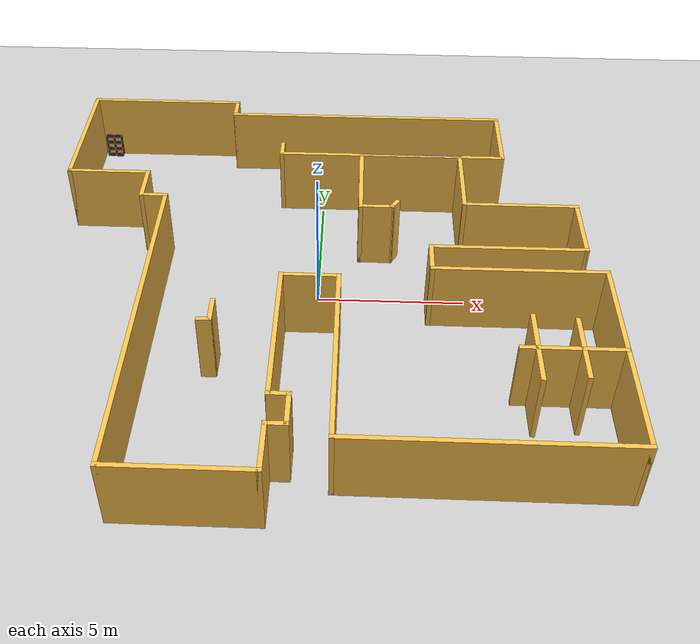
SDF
<sdf version="1.6">
 <world name="default">
  <model name="ground_plane">
   <static>1</static>
   <link name="link">
    <collision name="collision">
     <geometry><plane><normal>0 0 1</normal><size>100 100</size></plane></geometry>
     <surface>
      <contact><collide_bitmask>65535</collide_bitmask></contact>
      <friction><ode><mu>100</mu><mu2>50</mu2></ode></friction>
     </surface>
    </collision>
    <visual name="visual">
     <cast_shadows>0</cast_shadows>
     <geometry><plane><normal>0 0 1</normal><size>100 100</size></plane></geometry>
     <material>
      <script><uri>file://media/materials/scripts/gazebo.material</uri><name>Gazebo/Grey</name></script>
     </material>
    </visual>
   </link>
  </model>
  <model name="map_103">
   <pose>0.09073 -0.334732 0 0 -0 0</pose>
   <link name="Wall_10">
    <collision name="Wall_10_Collision">
     <geometry><box><size>1 0.15 2.5</size></box></geometry>
     <pose>0 0 1.25 0 -0 0</pose>
    </collision>
    <visual name="Wall_10_Visual">
     <pose>0 0 1.25 0 -0 0</pose>
     <geometry><box><size>1 0.15 2.5</size></box></geometry>
     <material>
      <script><uri>file://media/materials/scripts/gazebo.material</uri><name>Gazebo/Grey</name></script>
      <ambient>1 0.764706 0.305882 1</ambient>
     </material>
     <meta><layer>0</layer></meta>
    </visual>
    <pose>-5.975 2.825 0 0 -0 0</pose>
   </link>
   <link name="Wall_11">
    <collision name="Wall_11_Collision">
     <geometry><box><size>12 0.15 2.5</size></box></geometry>
     <pose>0 0 1.25 0 -0 0</pose>
    </collision>
    <visual name="Wall_11_Visual">
     <pose>0 0 1.25 0 -0 0</pose>
     <geometry><box><size>12 0.15 2.5</size></box></geometry>
     <material>
      <script><uri>file://media/materials/scripts/gazebo.material</uri><name>Gazebo/Grey</name></script>
      <ambient>1 0.764706 0.305882 1</ambient>
     </material>
     <meta><layer>0</layer></meta>
    </visual>
    <pose>-5.55 -3.1 0 0 -0 -1.5708</pose>
   </link>
   <link name="Wall_12">
    <collision name="Wall_12_Collision">
     <geometry><box><size>4.5 0.15 2.5</size></box></geometry>
     <pose>0 0 1.25 0 -0 0</pose>
    </collision>
    <visual name="Wall_12_Visual">
     <pose>0 0 1.25 0 -0 0</pose>
     <geometry><box><size>4.5 0.15 2.5</size></box></geometry>
     <material>
      <script><uri>file://media/materials/scripts/gazebo.material</uri><name>Gazebo/Grey</name></script>
      <ambient>1 0.764706 0.305882 1</ambient>
     </material>
     <meta><layer>0</layer></meta>
    </visual>
    <pose>-3.375 -9.025 0 0 -0 0</pose>
   </link>
   <link name="Wall_13">
    <collision name="Wall_13_Collision">
     <geometry><box><size>1.75 0.15 2.5</size></box></geometry>
     <pose>0 0 1.25 0 -0 0</pose>
    </collision>
    <visual name="Wall_13_Visual">
     <pose>0 0 1.25 0 -0 0</pose>
     <geometry><box><size>1.75 0.15 2.5</size></box></geometry>
     <material>
      <script><uri>file://media/materials/scripts/gazebo.material</uri><name>Gazebo/Grey</name></script>
      <ambient>1 0.764706 0.305882 1</ambient>
     </material>
     <meta><layer>0</layer></meta>
    </visual>
    <pose>-1.2 -8.225 0 0 -0 1.5708</pose>
   </link>
   <link name="Wall_14">
    <collision name="Wall_14_Collision">
     <geometry><box><size>0.75 0.15 2.5</size></box></geometry>
     <pose>0 0 1.25 0 -0 0</pose>
    </collision>
    <visual name="Wall_14_Visual">
     <pose>0 0 1.25 0 -0 0</pose>
     <geometry><box><size>0.75 0.15 2.5</size></box></geometry>
     <material>
      <script><uri>file://media/materials/scripts/gazebo.material</uri><name>Gazebo/Grey</name></script>
      <ambient>1 0.764706 0.305882 1</ambient>
     </material>
     <meta><layer>0</layer></meta>
    </visual>
    <pose>-0.9 -7.425 0 0 -0 0</pose>
   </link>
   <link name="Wall_15">
    <collision name="Wall_15_Collision">
     <geometry><box><size>1.25 0.15 2.5</size></box></geometry>
     <pose>0 0 1.25 0 -0 0</pose>
    </collision>
    <visual name="Wall_15_Visual">
     <pose>0 0 1.25 0 -0 0</pose>
     <geometry><box><size>1.25 0.15 2.5</size></box></geometry>
     <material>
      <script><uri>file://media/materials/scripts/gazebo.material</uri><name>Gazebo/Grey</name></script>
      <ambient>1 0.764706 0.305882 1</ambient>
     </material>
     <meta><layer>0</layer></meta>
    </visual>
    <pose>-0.6 -6.875 0 0 -0 1.5708</pose>
   </link>
   <link name="Wall_16">
    <collision name="Wall_16_Collision">
     <geometry><box><size>0.75 0.15 2.5</size></box></geometry>
     <pose>0 0 1.25 0 -0 0</pose>
    </collision>
    <visual name="Wall_16_Visual">
     <pose>0 0 1.25 0 -0 0</pose>
     <geometry><box><size>0.75 0.15 2.5</size></box></geometry>
     <material>
      <script><uri>file://media/materials/scripts/gazebo.material</uri><name>Gazebo/Grey</name></script>
      <ambient>1 0.764706 0.305882 1</ambient>
     </material>
     <meta><layer>0</layer></meta>
    </visual>
    <pose>-0.9 -6.325 0 0 -0 3.14159</pose>
   </link>
   <link name="Wall_20">
    <collision name="Wall_20_Collision">
     <geometry><box><size>8.75 0.15 2.5</size></box></geometry>
     <pose>0 0 1.25 0 -0 0</pose>
    </collision>
    <visual name="Wall_20_Visual">
     <pose>0 0 1.25 0 -0 0</pose>
     <geometry><box><size>8.75 0.15 2.5</size></box></geometry>
     <material>
      <script><uri>file://media/materials/scripts/gazebo.material</uri><name>Gazebo/Grey</name></script>
      <ambient>1 0.764706 0.305882 1</ambient>
     </material>
     <meta><layer>0</layer></meta>
    </visual>
    <pose>4.95 -7.825 0 0 -0 0</pose>
   </link>
   <link name="Wall_21">
    <collision name="Wall_21_Collision">
     <geometry><box><size>7.25 0.15 2.5</size></box></geometry>
     <pose>0 0 1.25 0 -0 0</pose>
    </collision>
    <visual name="Wall_21_Visual">
     <pose>0 0 1.25 0 -0 0</pose>
     <geometry><box><size>7.25 0.15 2.5</size></box></geometry>
     <material>
      <script><uri>file://media/materials/scripts/gazebo.material</uri><name>Gazebo/Grey</name></script>
      <ambient>1 0.764706 0.305882 1</ambient>
     </material>
     <meta><layer>0</layer></meta>
    </visual>
    <pose>9.25 -4.275 0 0 -0 1.5708</pose>
   </link>
   <link name="Wall_22">
    <collision name="Wall_22_Collision">
     <geometry><box><size>5.75 0.15 2.5</size></box></geometry>
     <pose>0 0 1.25 0 -0 0</pose>
    </collision>
    <visual name="Wall_22_Visual">
     <pose>0 0 1.25 0 -0 0</pose>
     <geometry><box><size>5.75 0.15 2.5</size></box></geometry>
     <material>
      <script><uri>file://media/materials/scripts/gazebo.material</uri><name>Gazebo/Grey</name></script>
      <ambient>1 0.764706 0.305882 1</ambient>
     </material>
     <meta><layer>0</layer></meta>
    </visual>
    <pose>6.45 -0.725 0 0 -0 3.14159</pose>
   </link>
   <link name="Wall_23">
    <collision name="Wall_23_Collision">
     <geometry><box><size>1.25 0.15 2.5</size></box></geometry>
     <pose>0 0 1.25 0 -0 0</pose>
    </collision>
    <visual name="Wall_23_Visual">
     <pose>0 0 1.25 0 -0 0</pose>
     <geometry><box><size>1.25 0.15 2.5</size></box></geometry>
     <material>
      <script><uri>file://media/materials/scripts/gazebo.material</uri><name>Gazebo/Grey</name></script>
      <ambient>1 0.764706 0.305882 1</ambient>
     </material>
     <meta><layer>0</layer></meta>
    </visual>
    <pose>3.65 -0.175 0 0 -0 1.5708</pose>
   </link>
   <link name="Wall_24">
    <collision name="Wall_24_Collision">
     <geometry><box><size>5.25 0.15 2.5</size></box></geometry>
     <pose>0 0 1.25 0 -0 0</pose>
    </collision>
    <visual name="Wall_24_Visual">
     <pose>0 0 1.25 0 -0 0</pose>
     <geometry><box><size>5.25 0.15 2.5</size></box></geometry>
     <material>
      <script><uri>file://media/materials/scripts/gazebo.material</uri><name>Gazebo/Grey</name></script>
      <ambient>1 0.764706 0.305882 1</ambient>
     </material>
     <meta><layer>0</layer></meta>
    </visual>
    <pose>6.2 0.375 0 0 -0 0</pose>
   </link>
   <link name="Wall_26">
    <collision name="Wall_26_Collision">
     <geometry><box><size>2.5 0.15 2.5</size></box></geometry>
     <pose>0 0 1.25 0 -0 0</pose>
    </collision>
    <visual name="Wall_26_Visual">
     <pose>0 0 1.25 0 -0 0</pose>
     <geometry><box><size>2.5 0.15 2.5</size></box></geometry>
     <material>
      <script><uri>file://media/materials/scripts/gazebo.material</uri><name>Gazebo/Grey</name></script>
      <ambient>1 0.764706 0.305882 1</ambient>
     </material>
     <meta><layer>0</layer></meta>
    </visual>
    <pose>8.75 1.55 0 0 -0 1.5708</pose>
   </link>
   <link name="Wall_27">
    <collision name="Wall_27_Collision">
     <geometry><box><size>4 0.15 2.5</size></box></geometry>
     <pose>0 0 1.25 0 -0 0</pose>
    </collision>
    <visual name="Wall_27_Visual">
     <pose>0 0 1.25 0 -0 0</pose>
     <geometry><box><size>4 0.15 2.5</size></box></geometry>
     <material>
      <script><uri>file://media/materials/scripts/gazebo.material</uri><name>Gazebo/Grey</name></script>
      <ambient>1 0.764706 0.305882 1</ambient>
     </material>
     <meta><layer>0</layer></meta>
    </visual>
    <pose>6.825 2.725 0 0 -0 3.14159</pose>
   </link>
   <link name="Wall_28">
    <collision name="Wall_28_Collision">
     <geometry><box><size>3 0.15 2.5</size></box></geometry>
     <pose>0 0 1.25 0 -0 0</pose>
    </collision>
    <visual name="Wall_28_Visual">
     <pose>0 0 1.25 0 -0 0</pose>
     <geometry><box><size>3 0.15 2.5</size></box></geometry>
     <material>
      <script><uri>file://media/materials/scripts/gazebo.material</uri><name>Gazebo/Grey</name></script>
      <ambient>1 0.764706 0.305882 1</ambient>
     </material>
     <meta><layer>0</layer></meta>
    </visual>
    <pose>4.9 4.15 0 0 -0 1.5708</pose>
   </link>
   <link name="Wall_29">
    <collision name="Wall_29_Collision">
     <geometry><box><size>3.75 0.15 2.5</size></box></geometry>
     <pose>0 0 1.25 0 -0 0</pose>
    </collision>
    <visual name="Wall_29_Visual">
     <pose>0 0 1.25 0 -0 0</pose>
     <geometry><box><size>3.75 0.15 2.5</size></box></geometry>
     <material>
      <script><uri>file://media/materials/scripts/gazebo.material</uri><name>Gazebo/Grey</name></script>
      <ambient>1 1 1 1</ambient>
     </material>
     <meta><layer>0</layer></meta>
    </visual>
    <pose>3.1 5.575 0 0 -0 3.14159</pose>
   </link>
   <link name="Wall_30">
    <collision name="Wall_30_Collision">
     <geometry><box><size>3.25 0.15 2.5</size></box></geometry>
     <pose>0 0 1.25 0 -0 0</pose>
    </collision>
    <visual name="Wall_30_Visual">
     <pose>0 0 1.25 0 -0 0</pose>
     <geometry><box><size>3.25 0.15 2.5</size></box></geometry>
     <material>
      <script><uri>file://media/materials/scripts/gazebo.material</uri><name>Gazebo/Grey</name></script>
      <ambient>1 0.764706 0.305882 1</ambient>
     </material>
     <meta><layer>0</layer></meta>
    </visual>
    <pose>1.3 4.025 0 0 -0 -1.5708</pose>
   </link>
   <link name="Wall_31">
    <collision name="Wall_31_Collision">
     <geometry><box><size>1.25 0.15 2.5</size></box></geometry>
     <pose>0 0 1.25 0 -0 0</pose>
    </collision>
    <visual name="Wall_31_Visual">
     <pose>0 0 1.25 0 -0 0</pose>
     <geometry><box><size>1.25 0.15 2.5</size></box></geometry>
     <material>
      <script><uri>file://media/materials/scripts/gazebo.material</uri><name>Gazebo/Grey</name></script>
      <ambient>1 0.764706 0.305882 1</ambient>
     </material>
     <meta><layer>0</layer></meta>
    </visual>
    <pose>1.85 2.475 0 0 -0 0</pose>
   </link>
   <link name="Wall_33">
    <collision name="Wall_33_Collision">
     <geometry><box><size>0.5 0.15 2.5</size></box></geometry>
     <pose>0 0 1.25 0 -0 0</pose>
    </collision>
    <visual name="Wall_33_Visual">
     <pose>0 0 1.25 0 -0 0</pose>
     <geometry><box><size>0.5 0.15 2.5</size></box></geometry>
     <material>
      <script><uri>file://media/materials/scripts/gazebo.material</uri><name>Gazebo/Grey</name></script>
      <ambient>1 0.764706 0.305882 1</ambient>
     </material>
     <meta><layer>0</layer></meta>
    </visual>
    <pose>2.4875 2.62656 0 0 -0 1.0472</pose>
   </link>
   <link name="Wall_35">
    <collision name="Wall_35_Collision">
     <geometry><box><size>5.25 0.15 2.5</size></box></geometry>
     <pose>0 0 1.25 0 -0 0</pose>
    </collision>
    <visual name="Wall_35_Visual">
     <pose>0 0 1.25 0 -0 0</pose>
     <geometry><box><size>5.25 0.15 2.5</size></box></geometry>
     <material>
      <script><uri>file://media/materials/scripts/gazebo.material</uri><name>Gazebo/Grey</name></script>
      <ambient>1 0.764706 0.305882 1</ambient>
     </material>
     <meta><layer>0</layer></meta>
    </visual>
    <pose>-1.2 -3.775 0 0 -0 1.5708</pose>
   </link>
   <link name="Wall_36">
    <collision name="Wall_36_Collision">
     <geometry><box><size>2 0.15 2.5</size></box></geometry>
     <pose>0 0 1.25 0 -0 0</pose>
    </collision>
    <visual name="Wall_36_Visual">
     <pose>0 0 1.25 0 -0 0</pose>
     <geometry><box><size>2 0.15 2.5</size></box></geometry>
     <material>
      <script><uri>file://media/materials/scripts/gazebo.material</uri><name>Gazebo/Grey</name></script>
      <ambient>1 0.764706 0.305882 1</ambient>
     </material>
     <meta><layer>0</layer></meta>
    </visual>
    <pose>-0.275 -1.225 0 0 -0 0</pose>
   </link>
   <link name="Wall_38">
    <collision name="Wall_38_Collision">
     <geometry><box><size>6.75 0.15 2.5</size></box></geometry>
     <pose>0 0 1.25 0 -0 0</pose>
    </collision>
    <visual name="Wall_38_Visual">
     <pose>0 0 1.25 0 -0 0</pose>
     <geometry><box><size>6.75 0.15 2.5</size></box></geometry>
     <material>
      <script><uri>file://media/materials/scripts/gazebo.material</uri><name>Gazebo/Grey</name></script>
      <ambient>1 0.764706 0.305882 1</ambient>
     </material>
     <meta><layer>0</layer></meta>
    </visual>
    <pose>0.65 -4.525 0 0 -0 -1.5708</pose>
   </link>
   <link name="Wall_4">
    <collision name="Wall_4_Collision">
     <geometry><box><size>5 0.15 2.5</size></box></geometry>
     <pose>0 0 1.25 0 -0 0</pose>
    </collision>
    <visual name="Wall_4_Visual">
     <pose>0 0 1.25 0 -0 0</pose>
     <geometry><box><size>5 0.15 2.5</size></box></geometry>
     <material>
      <script><uri>file://media/materials/scripts/gazebo.material</uri><name>Gazebo/Grey</name></script>
      <ambient>1 0.764706 0.305882 1</ambient>
     </material>
     <meta><layer>0</layer></meta>
    </visual>
    <pose>-9.25 6.6 0 0 -0 -1.5708</pose>
   </link>
   <link name="Wall_40">
    <collision name="Wall_40_Collision">
     <geometry><box><size>5.75 0.15 2.5</size></box></geometry>
     <pose>0 0 1.25 0 -0 0</pose>
    </collision>
    <visual name="Wall_40_Visual">
     <pose>0 0 1.25 0 -0 0</pose>
     <geometry><box><size>5.75 0.15 2.5</size></box></geometry>
     <material>
      <script><uri>file://media/materials/scripts/gazebo.material</uri><name>Gazebo/Grey</name></script>
      <ambient>1 0.764706 0.305882 1</ambient>
     </material>
     <meta><layer>0</layer></meta>
    </visual>
    <pose>-6.45 9.025 0 0 -0 0</pose>
   </link>
   <link name="Wall_43">
    <collision name="Wall_43_Collision">
     <geometry><box><size>1 0.15 2.5</size></box></geometry>
     <pose>0 0 1.25 0 -0 0</pose>
    </collision>
    <visual name="Wall_43_Visual">
     <pose>0 0 1.25 0 -0 0</pose>
     <geometry><box><size>1 0.15 2.5</size></box></geometry>
     <material>
      <script><uri>file://media/materials/scripts/gazebo.material</uri><name>Gazebo/Grey</name></script>
      <ambient>1 0.764706 0.305882 1</ambient>
     </material>
     <meta><layer>0</layer></meta>
    </visual>
    <pose>-3.65 8.6 0 0 -0 -1.5708</pose>
   </link>
   <link name="Wall_44">
    <collision name="Wall_44_Collision">
     <geometry><box><size>10.25 0.15 2.5</size></box></geometry>
     <pose>0 0 1.25 0 -0 0</pose>
    </collision>
    <visual name="Wall_44_Visual">
     <pose>0 0 1.25 0 -0 0</pose>
     <geometry><box><size>10.25 0.15 2.5</size></box></geometry>
     <material>
      <script><uri>file://media/materials/scripts/gazebo.material</uri><name>Gazebo/Grey</name></script>
      <ambient>1 0.764706 0.305882 1</ambient>
     </material>
     <meta><layer>0</layer></meta>
    </visual>
    <pose>1.4 8.175 0 0 -0 0</pose>
   </link>
   <link name="Wall_48">
    <collision name="Wall_48_Collision">
     <geometry><box><size>2.75 0.15 2.5</size></box></geometry>
     <pose>0 0 1.25 0 -0 0</pose>
    </collision>
    <visual name="Wall_48_Visual">
     <pose>0 0 1.25 0 -0 0</pose>
     <geometry><box><size>2.75 0.15 2.5</size></box></geometry>
     <material>
      <script><uri>file://media/materials/scripts/gazebo.material</uri><name>Gazebo/Grey</name></script>
      <ambient>1 0.764706 0.305882 1</ambient>
     </material>
     <meta><layer>0</layer></meta>
    </visual>
    <pose>6.45 6.875 0 0 -0 -1.5708</pose>
   </link>
   <link name="Wall_49">
    <collision name="Wall_49_Collision">
     <geometry><box><size>8.25 0.15 2.5</size></box></geometry>
     <pose>0 0 1.25 0 -0 0</pose>
    </collision>
    <visual name="Wall_49_Visual">
     <pose>0 0 1.25 0 -0 0</pose>
     <geometry><box><size>8.25 0.15 2.5</size></box></geometry>
     <material>
      <script><uri>file://media/materials/scripts/gazebo.material</uri><name>Gazebo/Grey</name></script>
      <ambient>1 0.764706 0.305882 1</ambient>
     </material>
     <meta><layer>0</layer></meta>
    </visual>
    <pose>2.4 5.575 0 0 -0 3.14159</pose>
   </link>
   <link name="Wall_50">
    <collision name="Wall_50_Collision">
     <geometry><box><size>0.75 0.15 2.5</size></box></geometry>
     <pose>0 0 1.25 0 -0 0</pose>
    </collision>
    <visual name="Wall_50_Visual">
     <pose>0 0 1.25 0 -0 0</pose>
     <geometry><box><size>0.75 0.15 2.5</size></box></geometry>
     <material>
      <script><uri>file://media/materials/scripts/gazebo.material</uri><name>Gazebo/Grey</name></script>
      <ambient>1 0.764706 0.305882 1</ambient>
     </material>
     <meta><layer>0</layer></meta>
    </visual>
    <pose>-1.65 5.875 0 0 -0 1.5708</pose>
   </link>
   <link name="Wall_52">
    <collision name="Wall_52_Collision">
     <geometry><box><size>3.25 0.15 2.5</size></box></geometry>
     <pose>0 0 1.25 0 -0 0</pose>
    </collision>
    <visual name="Wall_52_Visual">
     <pose>0 0 1.25 0 -0 0</pose>
     <geometry><box><size>3.25 0.15 2.5</size></box></geometry>
     <material>
      <script><uri>file://media/materials/scripts/gazebo.material</uri><name>Gazebo/Grey</name></script>
      <ambient>1 0.764706 0.305882 1</ambient>
     </material>
     <meta><layer>0</layer></meta>
    </visual>
    <pose>7.67584 -4.20349 0 0 -0 0</pose>
   </link>
   <link name="Wall_54">
    <collision name="Wall_54_Collision">
     <geometry><box><size>2.75 0.15 2.5</size></box></geometry>
     <pose>0 0 1.25 0 -0 0</pose>
    </collision>
    <visual name="Wall_54_Visual">
     <pose>0 0 1.25 0 -0 0</pose>
     <geometry><box><size>2.75 0.15 2.5</size></box></geometry>
     <material>
      <script><uri>file://media/materials/scripts/gazebo.material</uri><name>Gazebo/Grey</name></script>
      <ambient>1 0.764706 0.305882 1</ambient>
     </material>
     <meta><layer>0</layer></meta>
    </visual>
    <pose>6.61807 -4.14988 0 0 -0 -1.5708</pose>
   </link>
   <link name="Wall_56">
    <collision name="Wall_56_Collision">
     <geometry><box><size>2.5 0.15 2.5</size></box></geometry>
     <pose>0 0 1.25 0 -0 0</pose>
    </collision>
    <visual name="Wall_56_Visual">
     <pose>0 0 1.25 0 -0 0</pose>
     <geometry><box><size>2.5 0.15 2.5</size></box></geometry>
     <material>
      <script><uri>file://media/materials/scripts/gazebo.material</uri><name>Gazebo/Grey</name></script>
      <ambient>1 0.764706 0.305882 1</ambient>
     </material>
     <meta><layer>0</layer></meta>
    </visual>
    <pose>7.97168 -4.14794 0 0 -0 -1.5708</pose>
   </link>
   <link name="Wall_58">
    <collision name="Wall_58_Collision">
     <geometry><box><size>1 0.15 2.5</size></box></geometry>
     <pose>0 0 1.25 0 -0 0</pose>
    </collision>
    <visual name="Wall_58_Visual">
     <pose>0 0 1.25 0 -0 0</pose>
     <geometry><box><size>1 0.15 2.5</size></box></geometry>
     <material>
      <script><uri>file://media/materials/scripts/gazebo.material</uri><name>Gazebo/Grey</name></script>
      <ambient>1 0.764706 0.305882 1</ambient>
     </material>
     <meta><layer>0</layer></meta>
    </visual>
    <pose>-3.22639 -2.96724 0 0 -0 -1.5708</pose>
   </link>
   <link name="Wall_59">
    <collision name="Wall_59_Collision">
     <geometry><box><size>0.5 0.15 2.5</size></box></geometry>
     <pose>0 0 1.25 0 -0 0</pose>
    </collision>
    <visual name="Wall_59_Visual">
     <pose>0 0 1.25 0 -0 0</pose>
     <geometry><box><size>0.5 0.15 2.5</size></box></geometry>
     <material>
      <script><uri>file://media/materials/scripts/gazebo.material</uri><name>Gazebo/Grey</name></script>
      <ambient>1 0.764706 0.305882 1</ambient>
     </material>
     <meta><layer>0</layer></meta>
    </visual>
    <pose>-3.40139 -3.39224 0 0 -0 3.14159</pose>
   </link>
   <link name="Wall_8">
    <collision name="Wall_8_Collision">
     <geometry><box><size>3 0.15 2.5</size></box></geometry>
     <pose>0 0 1.25 0 -0 0</pose>
    </collision>
    <visual name="Wall_8_Visual">
     <pose>0 0 1.25 0 -0 0</pose>
     <geometry><box><size>3 0.15 2.5</size></box></geometry>
     <material>
      <script><uri>file://media/materials/scripts/gazebo.material</uri><name>Gazebo/Grey</name></script>
      <ambient>1 0.764706 0.305882 1</ambient>
     </material>
     <meta><layer>0</layer></meta>
    </visual>
    <pose>-7.825 4.175 0 0 -0 0</pose>
   </link>
   <link name="Wall_9">
    <collision name="Wall_9_Collision">
     <geometry><box><size>1.5 0.15 2.5</size></box></geometry>
     <pose>0 0 1.25 0 -0 0</pose>
    </collision>
    <visual name="Wall_9_Visual">
     <pose>0 0 1.25 0 -0 0</pose>
     <geometry><box><size>1.5 0.15 2.5</size></box></geometry>
     <material>
      <script><uri>file://media/materials/scripts/gazebo.material</uri><name>Gazebo/Grey</name></script>
      <ambient>1 0.764706 0.305882 1</ambient>
     </material>
     <meta><layer>0</layer></meta>
    </visual>
    <pose>-6.4 3.5 0 0 -0 -1.5708</pose>
   </link>
   <static>1</static>
  </model>
  <model name="6_Cube_StorageE_0">
   <link name="Wall_0">
    <pose>0 0 0.01 0 -0 0</pose>
    <inertial>
     <mass>1.6201</mass>
     <inertia><ixx>0.0119</ixx><iyy>0.0631</iyy><izz>0.0513</izz><ixy>0</ixy><ixz>0</ixz><iyz>0</iyz></inertia>
    </inertial>
    <collision name="Wall_0_Collision"><geometry><box><size>0.616 0.296 0.02</size></box></geometry></collision>
    <visual name="Wall_0_Visual">
     <geometry><box><size>0.616 0.296 0.02</size></box></geometry>
     <material>
      <script><uri>file://media/materials/scripts/gazebo.material</uri><name>Gazebo/Grey</name></script>
      <ambient>0.105882 0.0509804 0 1</ambient>
     </material>
    </visual>
   </link>
   <joint name="0_2" type="fixed">
    <pose>-0.308 0 0 0 -0 0</pose>
    <parent>Wall_2</parent>
    <child>Wall_0</child>
    <axis>
     <xyz>1 0 0</xyz>
     <use_parent_model_frame>0</use_parent_model_frame>
     <limit><lower>-1e+16</lower><upper>1e+16</upper></limit>
    </axis>
   </joint>
   <joint name="0_12" type="fixed">
    <parent>Wall_12</parent>
    <child>Wall_0</child>
    <axis>
     <xyz>0 0 1</xyz>
     <use_parent_model_frame>0</use_parent_model_frame>
     <limit><lower>-1e+16</lower><upper>1e+16</upper></limit>
    </axis>
   </joint>
   <joint name="0_4" type="fixed">
    <pose>0.308 0 0 0 -0 0</pose>
    <parent>Wall_4</parent>
    <child>Wall_0</child>
    <axis>
     <xyz>1 0 0</xyz>
     <use_parent_model_frame>0</use_parent_model_frame>
     <limit><lower>-1e+16</lower><upper>1e+16</upper></limit>
    </axis>
   </joint>
   <link name="Wall_10">
    <pose>0 0 0.61 0 -0 0</pose>
    <inertial>
     <mass>1.6201</mass>
     <inertia><ixx>0.0119</ixx><iyy>0.0631</iyy><izz>0.0513</izz><ixy>0</ixy><ixz>0</ixz><iyz>0</iyz></inertia>
    </inertial>
    <collision name="Wall_10_Collision"><geometry><box><size>0.616 0.296 0.02</size></box></geometry></collision>
    <visual name="Wall_10_Visual">
     <geometry><box><size>0.616 0.296 0.02</size></box></geometry>
     <material>
      <script><uri>file://media/materials/scripts/gazebo.material</uri><name>Gazebo/Grey</name></script>
      <ambient>0.105882 0.0509804 0 1</ambient>
     </material>
    </visual>
   </link>
   <joint name="10_2" type="fixed">
    <pose>-0.308 0 0 0 -0 0</pose>
    <parent>Wall_2</parent>
    <child>Wall_10</child>
    <axis>
     <xyz>1 0 0</xyz>
     <use_parent_model_frame>0</use_parent_model_frame>
     <limit><lower>-1e+16</lower><upper>1e+16</upper></limit>
    </axis>
   </joint>
   <joint name="10_12" type="fixed">
    <parent>Wall_12</parent>
    <child>Wall_10</child>
    <axis>
     <xyz>0 0 1</xyz>
     <use_parent_model_frame>0</use_parent_model_frame>
     <limit><lower>-1e+16</lower><upper>1e+16</upper></limit>
    </axis>
   </joint>
   <joint name="10_4" type="fixed">
    <pose>0.308 0 0 0 -0 0</pose>
    <parent>Wall_4</parent>
    <child>Wall_10</child>
    <axis>
     <xyz>1 0 0</xyz>
     <use_parent_model_frame>0</use_parent_model_frame>
     <limit><lower>-1e+16</lower><upper>1e+16</upper></limit>
    </axis>
   </joint>
   <link name="Wall_12">
    <pose>0 0 0.4575 0 -0 0</pose>
    <inertial>
     <mass>2.4065</mass>
     <inertia><ixx>0.0177</ixx><iyy>0.1855</iyy><izz>0.168</izz><ixy>0</ixy><ixz>0</ixz><iyz>0</iyz></inertia>
    </inertial>
    <collision name="Wall_12_Collision"><geometry><box><size>0.02 0.296 0.915</size></box></geometry></collision>
    <visual name="Wall_12_Visual">
     <geometry><box><size>0.02 0.296 0.915</size></box></geometry>
     <material>
      <script><uri>file://media/materials/scripts/gazebo.material</uri><name>Gazebo/Grey</name></script>
      <ambient>0.105882 0.0509804 0 1</ambient>
     </material>
    </visual>
   </link>
   <link name="Wall_2">
    <pose>-0.298 0 0.4575 0 -0 0</pose>
    <inertial>
     <mass>2.4065</mass>
     <inertia><ixx>0.0177</ixx><iyy>0.1855</iyy><izz>0.168</izz><ixy>0</ixy><ixz>0</ixz><iyz>0</iyz></inertia>
    </inertial>
    <collision name="Wall_2_Collision"><geometry><box><size>0.02 0.296 0.915</size></box></geometry></collision>
    <visual name="Wall_2_Visual">
     <geometry><box><size>0.02 0.296 0.915</size></box></geometry>
     <material>
      <script><uri>file://media/materials/scripts/gazebo.material</uri><name>Gazebo/Grey</name></script>
      <ambient>0.105882 0.0509804 0 1</ambient>
     </material>
    </visual>
   </link>
   <link name="Wall_4">
    <pose>0.298 0 0.4575 0 -0 0</pose>
    <inertial>
     <mass>2.4065</mass>
     <inertia><ixx>0.0177</ixx><iyy>0.1855</iyy><izz>0.168</izz><ixy>0</ixy><ixz>0</ixz><iyz>0</iyz></inertia>
    </inertial>
    <collision name="Wall_4_Collision"><geometry><box><size>0.02 0.296 0.915</size></box></geometry></collision>
    <visual name="Wall_4_Visual">
     <geometry><box><size>0.02 0.296 0.915</size></box></geometry>
     <material>
      <script><uri>file://media/materials/scripts/gazebo.material</uri><name>Gazebo/Grey</name></script>
      <ambient>0.105882 0.0509804 0 1</ambient>
     </material>
    </visual>
   </link>
   <link name="Wall_6">
    <pose>0 0 0.905 0 -0 0</pose>
    <inertial>
     <mass>1.6201</mass>
     <inertia><ixx>0.0119</ixx><iyy>0.0631</iyy><izz>0.0513</izz><ixy>0</ixy><ixz>0</ixz><iyz>0</iyz></inertia>
    </inertial>
    <collision name="Wall_6_Collision"><geometry><box><size>0.616 0.296 0.02</size></box></geometry></collision>
    <visual name="Wall_6_Visual">
     <geometry><box><size>0.616 0.296 0.02</size></box></geometry>
     <material>
      <script><uri>file://media/materials/scripts/gazebo.material</uri><name>Gazebo/Grey</name></script>
      <ambient>0.105882 0.0509804 0 1</ambient>
     </material>
    </visual>
   </link>
   <joint name="6_2" type="fixed">
    <pose>-0.308 0 0 0 -0 0</pose>
    <parent>Wall_2</parent>
    <child>Wall_6</child>
    <axis>
     <xyz>2 0 0</xyz>
     <use_parent_model_frame>0</use_parent_model_frame>
     <limit><lower>-1e+16</lower><upper>1e+16</upper></limit>
    </axis>
   </joint>
   <joint name="6_12" type="fixed">
    <parent>Wall_12</parent>
    <child>Wall_6</child>
    <axis>
     <xyz>0 0 1</xyz>
     <use_parent_model_frame>0</use_parent_model_frame>
     <limit><lower>-1e+16</lower><upper>1e+16</upper></limit>
    </axis>
   </joint>
   <joint name="6_4" type="fixed">
    <pose>0.308 0 0 0 -0 0</pose>
    <parent>Wall_4</parent>
    <child>Wall_6</child>
    <axis>
     <xyz>1 0 0</xyz>
     <use_parent_model_frame>0</use_parent_model_frame>
     <limit><lower>-1e+16</lower><upper>1e+16</upper></limit>
    </axis>
   </joint>
   <link name="Wall_8">
    <pose>0 0 0.305 0 -0 0</pose>
    <inertial>
     <mass>1.6201</mass>
     <inertia><ixx>0.0119</ixx><iyy>0.0631</iyy><izz>0.0513</izz><ixy>0</ixy><ixz>0</ixz><iyz>0</iyz></inertia>
    </inertial>
    <collision name="Wall_8_Collision"><geometry><box><size>0.616 0.296 0.02</size></box></geometry></collision>
    <visual name="Wall_8_Visual">
     <geometry><box><size>0.616 0.296 0.02</size></box></geometry>
     <material>
      <script><uri>file://media/materials/scripts/gazebo.material</uri><name>Gazebo/Grey</name></script>
      <ambient>0.105882 0.0509804 0 1</ambient>
     </material>
    </visual>
   </link>
   <joint name="8_2" type="fixed">
    <pose>-0.308 0 0 0 -0 0</pose>
    <parent>Wall_2</parent>
    <child>Wall_8</child>
    <axis>
     <xyz>1 0 0</xyz>
     <use_parent_model_frame>0</use_parent_model_frame>
     <limit><lower>-1e+16</lower><upper>1e+16</upper></limit>
    </axis>
   </joint>
   <joint name="8_12" type="fixed">
    <parent>Wall_12</parent>
    <child>Wall_8</child>
    <axis>
     <xyz>0 0 1</xyz>
     <use_parent_model_frame>0</use_parent_model_frame>
     <limit><lower>-1e+16</lower><upper>1e+16</upper></limit>
    </axis>
   </joint>
   <joint name="8_4" type="fixed">
    <pose>0.308 0 0 0 -0 0</pose>
    <parent>Wall_4</parent>
    <child>Wall_8</child>
    <axis>
     <xyz>1 0 0</xyz>
     <use_parent_model_frame>0</use_parent_model_frame>
     <limit><lower>-1e+16</lower><upper>1e+16</upper></limit>
    </axis>
   </joint>
   <static>1</static>
   <pose>-8.69115 8.54378 0 0 -0 0</pose>
  </model>
 </world>
</sdf>
